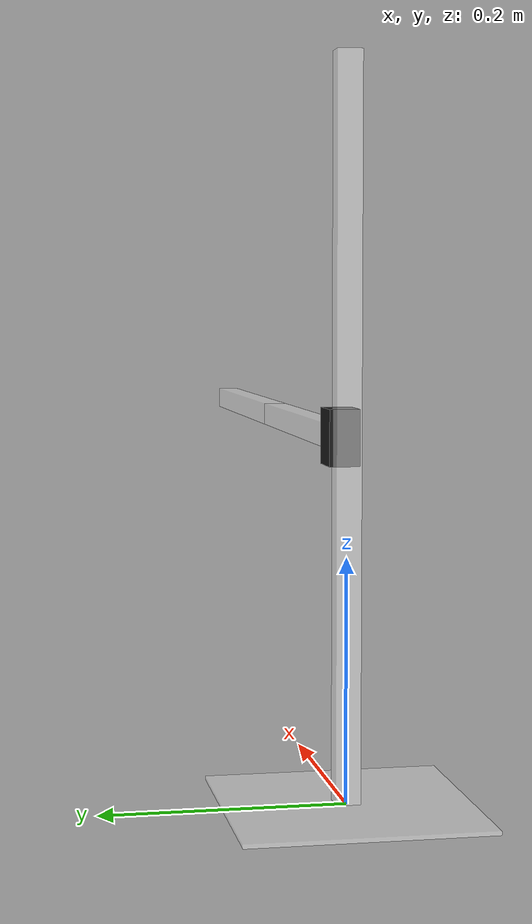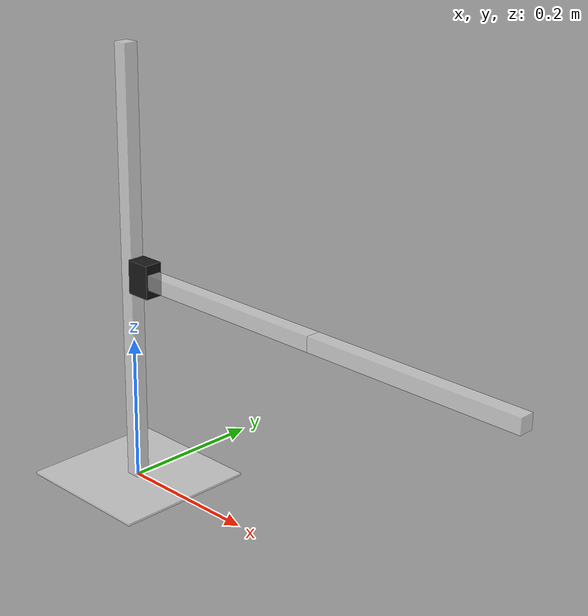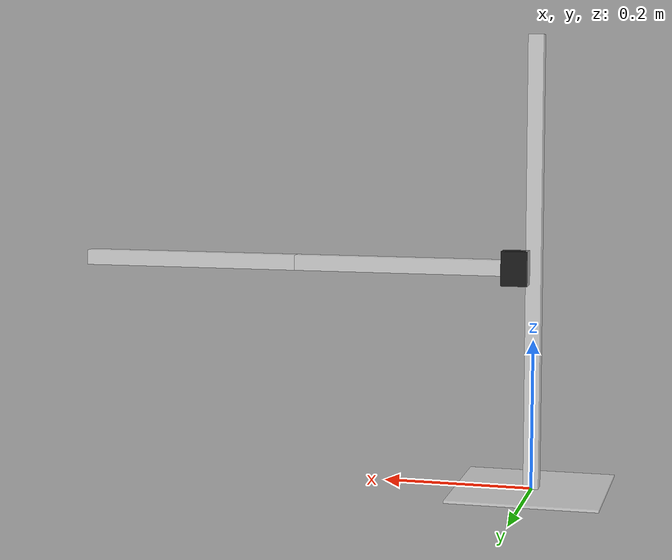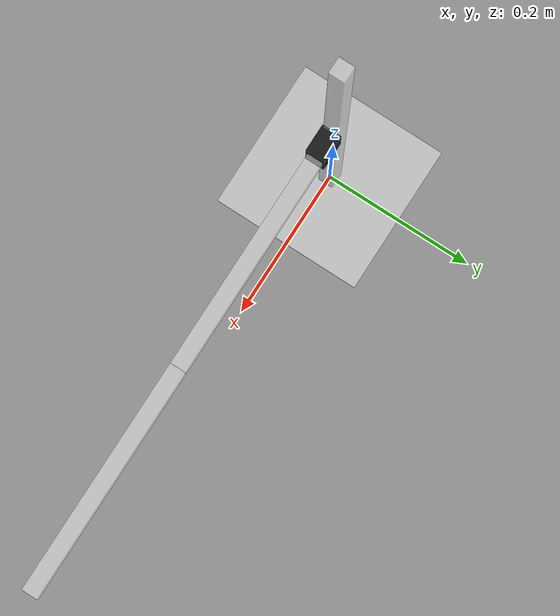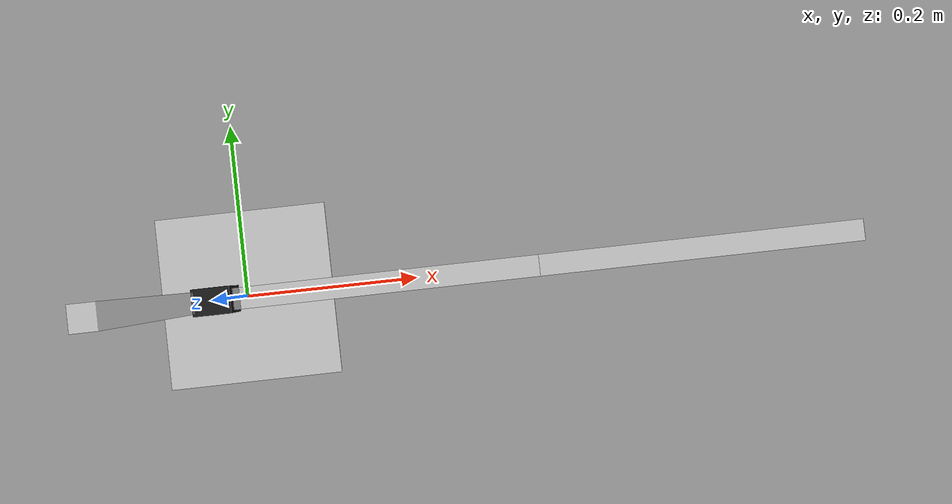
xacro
<?xml version='1.0'?>
<robot name="arb" xmlns:xacro="http://www.ros.org/wiki/xacro">
  <!-- Import all Gazebo-customization elements, including Gazebo colors -->
  <xacro:include filename="$(find arb_description)/urdf/arb.gazebo" />
  <!-- Import Rviz colors -->
  <xacro:include filename="$(find arb_description)/urdf/materials.xacro" />

  <xacro:property name="INF" value="1.0e+50"/>
  <xacro:property name="PI" value="3.1415926535897931"/>

  <xacro:property name="HEIGHT" value="0.6"/>
  <xacro:property name="FOREARM" value="0.3"/>

  <xacro:macro name="servo" params="suffix">
    <link name="servo_${suffix}">
      <inertial>
        <mass value="0.052"/>
        <inertia ixx="8.02e-06" ixy="0" ixz="0" iyy="1.188e-05" iyz="0" izz="1.448e-05"/>
      </inertial>
      <visual name='visual'>
        <geometry>
          <box size="0.035 0.025 0.046"/>
        </geometry>
        <material name="dgrey"/>
      </visual>
      <collision name='collision'>
        <geometry>
          <box size="0.035 0.025 0.046"/>
        </geometry>
      </collision>
    </link>
  </xacro:macro>

  <link name='base_link'>
    <inertial>
      <mass value="0.41"/>
      <inertia ixx="0.00076912" ixy="0" ixz="0" iyy="0.00062306" iyz="0" izz="0.00139144"/>
    </inertial>
    <visual name='visual'>
      <geometry>
        <box size="0.2 0.2 0.0033"/>
      </geometry>
      <material name="white"/>
    </visual>
    <collision name='collision'>
      <geometry>
        <box size="0.2 0.2 0.0033"/>
      </geometry>
    </collision>
  </link>

  <link name='spine'>
    <inertial>
      <mass value="0.41"/>
      <inertia ixx="0.00076912" ixy="0" ixz="0" iyy="0.00062306" iyz="0" izz="0.00139144"/>
    </inertial>
    <visual name='visual'>
      <geometry>
        <box size="0.02 0.02 ${HEIGHT}"/>
      </geometry>
      <material name="white"/>
    </visual>
    <collision name='collision'>
      <geometry>
        <box size="0.02 0.02 ${HEIGHT}"/>
      </geometry>
    </collision>
  </link>
  <joint name="spine_to_base" type="fixed">
    <origin xyz="0 0 0.3" rpy="0 0 0"/>
    <parent link="base_link"/>
    <child link="spine"/>
  </joint>

  <xacro:servo suffix='1'>
  </xacro:servo>
  <joint name='z_axis' type='prismatic'>
    <axis xyz="0 0 1"/>
    <limit lower="0.03" upper="0.56" effort="10" velocity="0.2"/>
    <origin xyz="0.025 0 ${-HEIGHT/2}" rpy="0 0 0"/>
    <parent link="spine"/>
    <child link="servo_1"/>
  </joint>

  <link name='upper_arm'>
    <inertial>
      <mass value="0.41"/>
      <inertia ixx="0.00076912" ixy="0" ixz="0" iyy="0.00062306" iyz="0" izz="0.00139144"/>
      <origin xyz="${FOREARM/2} 0 0"/>
    </inertial>
    <visual name='visual'>
      <geometry>
        <box size="${FOREARM} 0.02 0.02"/>
      </geometry>
      <material name="white"/>
      <origin xyz="${FOREARM/2} 0 0"/>
    </visual>
    <collision name='collision'>
      <geometry>
        <box size="${FOREARM} 0.02 0.02"/>
      </geometry>
      <origin xyz="${FOREARM/2} 0 0"/>
    </collision>
  </link>
  <joint name="shoulder" type="revolute">
    <axis xyz="0 0 1"/>
    <limit lower="-1.8" upper="1.8" effort="10" velocity="0.2"/>
    <origin xyz="0 0 0" rpy="0 0 0"/>
    <parent link="servo_1"/>
    <child link="upper_arm"/>
  </joint>

  <link name='forearm'>
    <inertial>
      <mass value="0.41"/>
      <inertia ixx="0.00076912" ixy="0" ixz="0" iyy="0.00062306" iyz="0" izz="0.00139144"/>
      <origin xyz="${FOREARM/2} 0 0"/>
    </inertial>
    <visual name='visual'>
      <geometry>
        <box size="${FOREARM} 0.02 0.02"/>
      </geometry>
      <material name="white"/>
      <origin xyz="${FOREARM/2} 0 0"/>
    </visual>
    <collision name='collision'>
      <geometry>
        <box size="${FOREARM} 0.02 0.02"/>
      </geometry>
      <origin xyz="${FOREARM/2} 0 0"/>
    </collision>
  </link>
  <joint name="elbow" type="revolute">
    <axis xyz="0 0 1"/>
    <limit lower="-3.0" upper="3.0" effort="10" velocity="0.2"/>
    <origin xyz="${FOREARM} 0 0" rpy="0 0 0"/>
    <parent link="upper_arm"/>
    <child link="forearm"/>
  </joint>

</robot>

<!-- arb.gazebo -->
<robot>
  <!-- ros_control plugin -->
  <gazebo>
    <plugin name="gazebo_ros_control" filename="libgazebo_ros_control.so">
      <robotNamespace>arb</robotNamespace>
      <robotSimType>gazebo_ros_control/DefaultRobotHWSim</robotSimType>
    </plugin>
  </gazebo>

  <link name="world"/>
  <joint name="fixed" type="fixed">
    <parent link="world"/>
    <child link="base_link"/>
  </joint>

  <transmission name="z">
    <type>transmission_interface/SimpleTransmission</type>
    <joint name="z_axis">
      <hardwareInterface>hardware_interface/PositionJointInterface</hardwareInterface>
    </joint>
    <actuator name="servo1">
      <hardwareInterface>hardware_interface/PositionJointInterface</hardwareInterface>
      <mechanicalReduction>1</mechanicalReduction>
    </actuator>
  </transmission>

  <transmission name="shoulder_tran">
    <type>transmission_interface/SimpleTransmission</type>
    <joint name="shoulder">
      <hardwareInterface>hardware_interface/PositionJointInterface</hardwareInterface>
    </joint>
    <actuator name="servo2">
      <hardwareInterface>hardware_interface/PositionJointInterface</hardwareInterface>
      <mechanicalReduction>1</mechanicalReduction>
    </actuator>
  </transmission>

  <transmission name="elbow_tran">
    <type>transmission_interface/SimpleTransmission</type>
    <joint name="elbow">
      <hardwareInterface>hardware_interface/PositionJointInterface</hardwareInterface>
    </joint>
    <actuator name="servo3">
      <hardwareInterface>hardware_interface/PositionJointInterface</hardwareInterface>
      <mechanicalReduction>1</mechanicalReduction>
    </actuator>
  </transmission>
</robot>

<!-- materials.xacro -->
<robot>

  <material name="black">
    <color rgba="0.0 0.0 0.0 1.0"/>
  </material>

  <material name="blue">
    <color rgba="0.0 0.0 0.8 1.0"/>
  </material>

  <material name="green">
    <color rgba="0.0 0.8 0.0 1.0"/>
  </material>

  <material name="grey">
    <color rgba="0.3 0.3 0.3 1.0"/>
  </material>

  <material name="dgrey">
    <color rgba="0.1 0.1 0.1 1.0"/>
  </material>

  <material name="orange">
    <color rgba="${255/255} ${108/255} ${10/255} 1.0"/>
  </material>

  <material name="brown">
    <color rgba="${222/255} ${207/255} ${195/255} 1.0"/>
  </material>

  <material name="red">
    <color rgba="0.8 0.0 0.0 1.0"/>
  </material>

  <material name="white">
    <color rgba="1.0 1.0 1.0 0.5"/>
  </material>

</robot>
